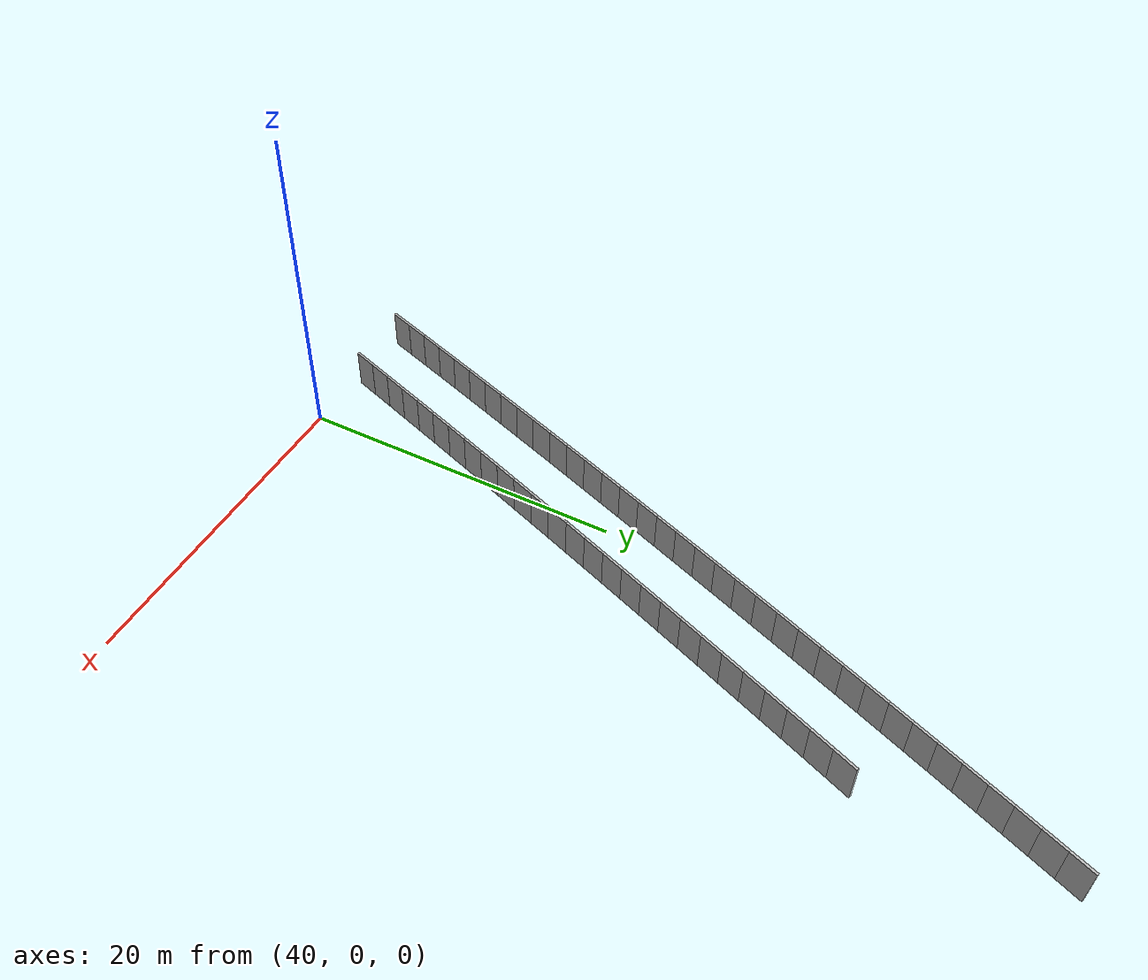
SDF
<?xml version="1.0" ?>
<sdf version="1.6">
  <model name="sps_0332">
    <pose frame="">0 0 0 0 -0 0</pose>
    <static>1</static>
    <self_collide>0</self_collide>
    <allow_auto_disable>0</allow_auto_disable>
    <link name="Wall4972">
      <kinematic>0</kinematic>
      <gravity>1</gravity>
      <self_collide>0</self_collide>
      <collision name="collision">
        <geometry>
          <box>
            <size>1.49656 0.15 2.5</size>
          </box>
        </geometry>
        <pose frame="">0 0 0 0 -0 0</pose>
      </collision>
      <visual name="visual">
        <geometry>
          <box>
            <size>1.49656 0.15 2.5</size>
          </box>
        </geometry>
        <pose frame="">0 0 0 0 -0 0</pose>
        <cast_shadows>1</cast_shadows>
        <transparency>0.0</transparency>
      </visual>
      <pose frame="">49.6162 37.5863 1.25 0 0 -1.94453</pose>
    </link>
    <link name="Wall4973">
      <kinematic>0</kinematic>
      <gravity>1</gravity>
      <self_collide>0</self_collide>
      <collision name="collision">
        <geometry>
          <box>
            <size>1.49637 0.15 2.5</size>
          </box>
        </geometry>
        <pose frame="">0 0 0 0 -0 0</pose>
      </collision>
      <visual name="visual">
        <geometry>
          <box>
            <size>1.49637 0.15 2.5</size>
          </box>
        </geometry>
        <pose frame="">0 0 0 0 -0 0</pose>
        <cast_shadows>1</cast_shadows>
        <transparency>0.0</transparency>
      </visual>
      <pose frame="">49.071 36.1927 1.25 0 0 -1.94287</pose>
    </link>
    <link name="Wall4974">
      <kinematic>0</kinematic>
      <gravity>1</gravity>
      <self_collide>0</self_collide>
      <collision name="collision">
        <geometry>
          <box>
            <size>1.49655 0.15 2.5</size>
          </box>
        </geometry>
        <pose frame="">0 0 0 0 -0 0</pose>
      </collision>
      <visual name="visual">
        <geometry>
          <box>
            <size>1.49655 0.15 2.5</size>
          </box>
        </geometry>
        <pose frame="">0 0 0 0 -0 0</pose>
        <cast_shadows>1</cast_shadows>
        <transparency>0.0</transparency>
      </visual>
      <pose frame="">48.528 34.7982 1.25 0 0 -1.94138</pose>
    </link>
    <link name="Wall4975">
      <kinematic>0</kinematic>
      <gravity>1</gravity>
      <self_collide>0</self_collide>
      <collision name="collision">
        <geometry>
          <box>
            <size>1.49649 0.15 2.5</size>
          </box>
        </geometry>
        <pose frame="">0 0 0 0 -0 0</pose>
      </collision>
      <visual name="visual">
        <geometry>
          <box>
            <size>1.49649 0.15 2.5</size>
          </box>
        </geometry>
        <pose frame="">0 0 0 0 -0 0</pose>
        <cast_shadows>1</cast_shadows>
        <transparency>0.0</transparency>
      </visual>
      <pose frame="">47.9872 33.4028 1.25 0 0 -1.93969</pose>
    </link>
    <link name="Wall4976">
      <kinematic>0</kinematic>
      <gravity>1</gravity>
      <self_collide>0</self_collide>
      <collision name="collision">
        <geometry>
          <box>
            <size>1.4965 0.15 2.5</size>
          </box>
        </geometry>
        <pose frame="">0 0 0 0 -0 0</pose>
      </collision>
      <visual name="visual">
        <geometry>
          <box>
            <size>1.4965 0.15 2.5</size>
          </box>
        </geometry>
        <pose frame="">0 0 0 0 -0 0</pose>
        <cast_shadows>1</cast_shadows>
        <transparency>0.0</transparency>
      </visual>
      <pose frame="">47.4486 32.0066 1.25 0 0 -1.93825</pose>
    </link>
    <link name="Wall4977">
      <kinematic>0</kinematic>
      <gravity>1</gravity>
      <self_collide>0</self_collide>
      <collision name="collision">
        <geometry>
          <box>
            <size>1.49637 0.15 2.5</size>
          </box>
        </geometry>
        <pose frame="">0 0 0 0 -0 0</pose>
      </collision>
      <visual name="visual">
        <geometry>
          <box>
            <size>1.49637 0.15 2.5</size>
          </box>
        </geometry>
        <pose frame="">0 0 0 0 -0 0</pose>
        <cast_shadows>1</cast_shadows>
        <transparency>0.0</transparency>
      </visual>
      <pose frame="">46.9123 30.6096 1.25 0 0 -1.93653</pose>
    </link>
    <link name="Wall4978">
      <kinematic>0</kinematic>
      <gravity>1</gravity>
      <self_collide>0</self_collide>
      <collision name="collision">
        <geometry>
          <box>
            <size>1.49664 0.15 2.5</size>
          </box>
        </geometry>
        <pose frame="">0 0 0 0 -0 0</pose>
      </collision>
      <visual name="visual">
        <geometry>
          <box>
            <size>1.49664 0.15 2.5</size>
          </box>
        </geometry>
        <pose frame="">0 0 0 0 -0 0</pose>
        <cast_shadows>1</cast_shadows>
        <transparency>0.0</transparency>
      </visual>
      <pose frame="">46.3781 29.2117 1.25 0 0 -1.93507</pose>
    </link>
    <link name="Wall4979">
      <kinematic>0</kinematic>
      <gravity>1</gravity>
      <self_collide>0</self_collide>
      <collision name="collision">
        <geometry>
          <box>
            <size>1.49654 0.15 2.5</size>
          </box>
        </geometry>
        <pose frame="">0 0 0 0 -0 0</pose>
      </collision>
      <visual name="visual">
        <geometry>
          <box>
            <size>1.49654 0.15 2.5</size>
          </box>
        </geometry>
        <pose frame="">0 0 0 0 -0 0</pose>
        <cast_shadows>1</cast_shadows>
        <transparency>0.0</transparency>
      </visual>
      <pose frame="">45.846 27.8129 1.25 0 0 -1.93352</pose>
    </link>
    <link name="Wall4980">
      <kinematic>0</kinematic>
      <gravity>1</gravity>
      <self_collide>0</self_collide>
      <collision name="collision">
        <geometry>
          <box>
            <size>1.49667 0.15 2.5</size>
          </box>
        </geometry>
        <pose frame="">0 0 0 0 -0 0</pose>
      </collision>
      <visual name="visual">
        <geometry>
          <box>
            <size>1.49667 0.15 2.5</size>
          </box>
        </geometry>
        <pose frame="">0 0 0 0 -0 0</pose>
        <cast_shadows>1</cast_shadows>
        <transparency>0.0</transparency>
      </visual>
      <pose frame="">45.3162 26.4132 1.25 0 0 -1.93179</pose>
    </link>
    <link name="Wall4981">
      <kinematic>0</kinematic>
      <gravity>1</gravity>
      <self_collide>0</self_collide>
      <collision name="collision">
        <geometry>
          <box>
            <size>1.49653 0.15 2.5</size>
          </box>
        </geometry>
        <pose frame="">0 0 0 0 -0 0</pose>
      </collision>
      <visual name="visual">
        <geometry>
          <box>
            <size>1.49653 0.15 2.5</size>
          </box>
        </geometry>
        <pose frame="">0 0 0 0 -0 0</pose>
        <cast_shadows>1</cast_shadows>
        <transparency>0.0</transparency>
      </visual>
      <pose frame="">44.7885 25.0127 1.25 0 0 -1.93038</pose>
    </link>
    <link name="Wall4982">
      <kinematic>0</kinematic>
      <gravity>1</gravity>
      <self_collide>0</self_collide>
      <collision name="collision">
        <geometry>
          <box>
            <size>1.49636 0.15 2.5</size>
          </box>
        </geometry>
        <pose frame="">0 0 0 0 -0 0</pose>
      </collision>
      <visual name="visual">
        <geometry>
          <box>
            <size>1.49636 0.15 2.5</size>
          </box>
        </geometry>
        <pose frame="">0 0 0 0 -0 0</pose>
        <cast_shadows>1</cast_shadows>
        <transparency>0.0</transparency>
      </visual>
      <pose frame="">44.2631 23.6115 1.25 0 0 -1.92868</pose>
    </link>
    <link name="Wall4983">
      <kinematic>0</kinematic>
      <gravity>1</gravity>
      <self_collide>0</self_collide>
      <collision name="collision">
        <geometry>
          <box>
            <size>1.49642 0.15 2.5</size>
          </box>
        </geometry>
        <pose frame="">0 0 0 0 -0 0</pose>
      </collision>
      <visual name="visual">
        <geometry>
          <box>
            <size>1.49642 0.15 2.5</size>
          </box>
        </geometry>
        <pose frame="">0 0 0 0 -0 0</pose>
        <cast_shadows>1</cast_shadows>
        <transparency>0.0</transparency>
      </visual>
      <pose frame="">43.74 22.2095 1.25 0 0 -1.92715</pose>
    </link>
    <link name="Wall4984">
      <kinematic>0</kinematic>
      <gravity>1</gravity>
      <self_collide>0</self_collide>
      <collision name="collision">
        <geometry>
          <box>
            <size>1.4966 0.15 2.5</size>
          </box>
        </geometry>
        <pose frame="">0 0 0 0 -0 0</pose>
      </collision>
      <visual name="visual">
        <geometry>
          <box>
            <size>1.4966 0.15 2.5</size>
          </box>
        </geometry>
        <pose frame="">0 0 0 0 -0 0</pose>
        <cast_shadows>1</cast_shadows>
        <transparency>0.0</transparency>
      </visual>
      <pose frame="">43.2191 20.8066 1.25 0 0 -1.92549</pose>
    </link>
    <link name="Wall4985">
      <kinematic>0</kinematic>
      <gravity>1</gravity>
      <self_collide>0</self_collide>
      <collision name="collision">
        <geometry>
          <box>
            <size>1.49653 0.15 2.5</size>
          </box>
        </geometry>
        <pose frame="">0 0 0 0 -0 0</pose>
      </collision>
      <visual name="visual">
        <geometry>
          <box>
            <size>1.49653 0.15 2.5</size>
          </box>
        </geometry>
        <pose frame="">0 0 0 0 -0 0</pose>
        <cast_shadows>1</cast_shadows>
        <transparency>0.0</transparency>
      </visual>
      <pose frame="">42.7005 19.4028 1.25 0 0 -1.92394</pose>
    </link>
    <link name="Wall4986">
      <kinematic>0</kinematic>
      <gravity>1</gravity>
      <self_collide>0</self_collide>
      <collision name="collision">
        <geometry>
          <box>
            <size>1.49636 0.15 2.5</size>
          </box>
        </geometry>
        <pose frame="">0 0 0 0 -0 0</pose>
      </collision>
      <visual name="visual">
        <geometry>
          <box>
            <size>1.49636 0.15 2.5</size>
          </box>
        </geometry>
        <pose frame="">0 0 0 0 -0 0</pose>
        <cast_shadows>1</cast_shadows>
        <transparency>0.0</transparency>
      </visual>
      <pose frame="">42.184 17.9983 1.25 0 0 -1.92246</pose>
    </link>
    <link name="Wall4987">
      <kinematic>0</kinematic>
      <gravity>1</gravity>
      <self_collide>0</self_collide>
      <collision name="collision">
        <geometry>
          <box>
            <size>1.4965 0.15 2.5</size>
          </box>
        </geometry>
        <pose frame="">0 0 0 0 -0 0</pose>
      </collision>
      <visual name="visual">
        <geometry>
          <box>
            <size>1.4965 0.15 2.5</size>
          </box>
        </geometry>
        <pose frame="">0 0 0 0 -0 0</pose>
        <cast_shadows>1</cast_shadows>
        <transparency>0.0</transparency>
      </visual>
      <pose frame="">41.6697 16.593 1.25 0 0 -1.92069</pose>
    </link>
    <link name="Wall4988">
      <kinematic>0</kinematic>
      <gravity>1</gravity>
      <self_collide>0</self_collide>
      <collision name="collision">
        <geometry>
          <box>
            <size>1.49655 0.15 2.5</size>
          </box>
        </geometry>
        <pose frame="">0 0 0 0 -0 0</pose>
      </collision>
      <visual name="visual">
        <geometry>
          <box>
            <size>1.49655 0.15 2.5</size>
          </box>
        </geometry>
        <pose frame="">0 0 0 0 -0 0</pose>
        <cast_shadows>1</cast_shadows>
        <transparency>0.0</transparency>
      </visual>
      <pose frame="">41.1577 15.1868 1.25 0 0 -1.91925</pose>
    </link>
    <link name="Wall4989">
      <kinematic>0</kinematic>
      <gravity>1</gravity>
      <self_collide>0</self_collide>
      <collision name="collision">
        <geometry>
          <box>
            <size>1.49655 0.15 2.5</size>
          </box>
        </geometry>
        <pose frame="">0 0 0 0 -0 0</pose>
      </collision>
      <visual name="visual">
        <geometry>
          <box>
            <size>1.49655 0.15 2.5</size>
          </box>
        </geometry>
        <pose frame="">0 0 0 0 -0 0</pose>
        <cast_shadows>1</cast_shadows>
        <transparency>0.0</transparency>
      </visual>
      <pose frame="">40.6478 13.7798 1.25 0 0 -1.91769</pose>
    </link>
    <link name="Wall4990">
      <kinematic>0</kinematic>
      <gravity>1</gravity>
      <self_collide>0</self_collide>
      <collision name="collision">
        <geometry>
          <box>
            <size>1.49637 0.15 2.5</size>
          </box>
        </geometry>
        <pose frame="">0 0 0 0 -0 0</pose>
      </collision>
      <visual name="visual">
        <geometry>
          <box>
            <size>1.49637 0.15 2.5</size>
          </box>
        </geometry>
        <pose frame="">0 0 0 0 -0 0</pose>
        <cast_shadows>1</cast_shadows>
        <transparency>0.0</transparency>
      </visual>
      <pose frame="">40.1403 12.372 1.25 0 0 -1.91591</pose>
    </link>
    <link name="Wall4991">
      <kinematic>0</kinematic>
      <gravity>1</gravity>
      <self_collide>0</self_collide>
      <collision name="collision">
        <geometry>
          <box>
            <size>1.49679 0.15 2.5</size>
          </box>
        </geometry>
        <pose frame="">0 0 0 0 -0 0</pose>
      </collision>
      <visual name="visual">
        <geometry>
          <box>
            <size>1.49679 0.15 2.5</size>
          </box>
        </geometry>
        <pose frame="">0 0 0 0 -0 0</pose>
        <cast_shadows>1</cast_shadows>
        <transparency>0.0</transparency>
      </visual>
      <pose frame="">39.635 10.9633 1.25 0 0 -1.91451</pose>
    </link>
    <link name="Wall4992">
      <kinematic>0</kinematic>
      <gravity>1</gravity>
      <self_collide>0</self_collide>
      <collision name="collision">
        <geometry>
          <box>
            <size>1.49625 0.15 2.5</size>
          </box>
        </geometry>
        <pose frame="">0 0 0 0 -0 0</pose>
      </collision>
      <visual name="visual">
        <geometry>
          <box>
            <size>1.49625 0.15 2.5</size>
          </box>
        </geometry>
        <pose frame="">0 0 0 0 -0 0</pose>
        <cast_shadows>1</cast_shadows>
        <transparency>0.0</transparency>
      </visual>
      <pose frame="">39.1319 9.55388 1.25 0 0 -1.91277</pose>
    </link>
    <link name="Wall4993">
      <kinematic>0</kinematic>
      <gravity>1</gravity>
      <self_collide>0</self_collide>
      <collision name="collision">
        <geometry>
          <box>
            <size>1.49669 0.15 2.5</size>
          </box>
        </geometry>
        <pose frame="">0 0 0 0 -0 0</pose>
      </collision>
      <visual name="visual">
        <geometry>
          <box>
            <size>1.49669 0.15 2.5</size>
          </box>
        </geometry>
        <pose frame="">0 0 0 0 -0 0</pose>
        <cast_shadows>1</cast_shadows>
        <transparency>0.0</transparency>
      </visual>
      <pose frame="">38.6312 8.14369 1.25 0 0 -1.91129</pose>
    </link>
    <link name="Wall4994">
      <kinematic>0</kinematic>
      <gravity>1</gravity>
      <self_collide>0</self_collide>
      <collision name="collision">
        <geometry>
          <box>
            <size>1.49651 0.15 2.5</size>
          </box>
        </geometry>
        <pose frame="">0 0 0 0 -0 0</pose>
      </collision>
      <visual name="visual">
        <geometry>
          <box>
            <size>1.49651 0.15 2.5</size>
          </box>
        </geometry>
        <pose frame="">0 0 0 0 -0 0</pose>
        <cast_shadows>1</cast_shadows>
        <transparency>0.0</transparency>
      </visual>
      <pose frame="">38.1326 6.73259 1.25 0 0 -1.9096</pose>
    </link>
    <link name="Wall4995">
      <kinematic>0</kinematic>
      <gravity>1</gravity>
      <self_collide>0</self_collide>
      <collision name="collision">
        <geometry>
          <box>
            <size>1.49649 0.15 2.5</size>
          </box>
        </geometry>
        <pose frame="">0 0 0 0 -0 0</pose>
      </collision>
      <visual name="visual">
        <geometry>
          <box>
            <size>1.49649 0.15 2.5</size>
          </box>
        </geometry>
        <pose frame="">0 0 0 0 -0 0</pose>
        <cast_shadows>1</cast_shadows>
        <transparency>0.0</transparency>
      </visual>
      <pose frame="">37.6363 5.32078 1.25 0 0 -1.90809</pose>
    </link>
    <link name="Wall4996">
      <kinematic>0</kinematic>
      <gravity>1</gravity>
      <self_collide>0</self_collide>
      <collision name="collision">
        <geometry>
          <box>
            <size>1.49655 0.15 2.5</size>
          </box>
        </geometry>
        <pose frame="">0 0 0 0 -0 0</pose>
      </collision>
      <visual name="visual">
        <geometry>
          <box>
            <size>1.49655 0.15 2.5</size>
          </box>
        </geometry>
        <pose frame="">0 0 0 0 -0 0</pose>
        <cast_shadows>1</cast_shadows>
        <transparency>0.0</transparency>
      </visual>
      <pose frame="">37.1421 3.90819 1.25 0 0 -1.90648</pose>
    </link>
    <link name="Wall4997">
      <kinematic>0</kinematic>
      <gravity>1</gravity>
      <self_collide>0</self_collide>
      <collision name="collision">
        <geometry>
          <box>
            <size>1.49658 0.15 2.5</size>
          </box>
        </geometry>
        <pose frame="">0 0 0 0 -0 0</pose>
      </collision>
      <visual name="visual">
        <geometry>
          <box>
            <size>1.49658 0.15 2.5</size>
          </box>
        </geometry>
        <pose frame="">0 0 0 0 -0 0</pose>
        <cast_shadows>1</cast_shadows>
        <transparency>0.0</transparency>
      </visual>
      <pose frame="">36.6502 2.4948 1.25 0 0 -1.90504</pose>
    </link>
    <link name="Wall4998">
      <kinematic>0</kinematic>
      <gravity>1</gravity>
      <self_collide>0</self_collide>
      <collision name="collision">
        <geometry>
          <box>
            <size>1.49638 0.15 2.5</size>
          </box>
        </geometry>
        <pose frame="">0 0 0 0 -0 0</pose>
      </collision>
      <visual name="visual">
        <geometry>
          <box>
            <size>1.49638 0.15 2.5</size>
          </box>
        </geometry>
        <pose frame="">0 0 0 0 -0 0</pose>
        <cast_shadows>1</cast_shadows>
        <transparency>0.0</transparency>
      </visual>
      <pose frame="">36.1605 1.0807 1.25 0 0 -1.90328</pose>
    </link>
    <link name="Wall6761">
      <kinematic>0</kinematic>
      <gravity>1</gravity>
      <self_collide>0</self_collide>
      <collision name="collision">
        <geometry>
          <box>
            <size>1.50302 0.15 2.5</size>
          </box>
        </geometry>
        <pose frame="">0 0 0 0 -0 0</pose>
      </collision>
      <visual name="visual">
        <geometry>
          <box>
            <size>1.50302 0.15 2.5</size>
          </box>
        </geometry>
        <pose frame="">0 0 0 0 -0 0</pose>
        <cast_shadows>1</cast_shadows>
        <transparency>0.0</transparency>
      </visual>
      <pose frame="">49.6587 48.8716 1.25 0 0 -1.95578</pose>
    </link>
    <link name="Wall6762">
      <kinematic>0</kinematic>
      <gravity>1</gravity>
      <self_collide>0</self_collide>
      <collision name="collision">
        <geometry>
          <box>
            <size>1.50299 0.15 2.5</size>
          </box>
        </geometry>
        <pose frame="">0 0 0 0 -0 0</pose>
      </collision>
      <visual name="visual">
        <geometry>
          <box>
            <size>1.50299 0.15 2.5</size>
          </box>
        </geometry>
        <pose frame="">0 0 0 0 -0 0</pose>
        <cast_shadows>1</cast_shadows>
        <transparency>0.0</transparency>
      </visual>
      <pose frame="">49.0955 47.4781 1.25 0 0 -1.95399</pose>
    </link>
    <link name="Wall6763">
      <kinematic>0</kinematic>
      <gravity>1</gravity>
      <self_collide>0</self_collide>
      <collision name="collision">
        <geometry>
          <box>
            <size>1.5031 0.15 2.5</size>
          </box>
        </geometry>
        <pose frame="">0 0 0 0 -0 0</pose>
      </collision>
      <visual name="visual">
        <geometry>
          <box>
            <size>1.5031 0.15 2.5</size>
          </box>
        </geometry>
        <pose frame="">0 0 0 0 -0 0</pose>
        <cast_shadows>1</cast_shadows>
        <transparency>0.0</transparency>
      </visual>
      <pose frame="">48.5346 46.0836 1.25 0 0 -1.95243</pose>
    </link>
    <link name="Wall6764">
      <kinematic>0</kinematic>
      <gravity>1</gravity>
      <self_collide>0</self_collide>
      <collision name="collision">
        <geometry>
          <box>
            <size>1.50307 0.15 2.5</size>
          </box>
        </geometry>
        <pose frame="">0 0 0 0 -0 0</pose>
      </collision>
      <visual name="visual">
        <geometry>
          <box>
            <size>1.50307 0.15 2.5</size>
          </box>
        </geometry>
        <pose frame="">0 0 0 0 -0 0</pose>
        <cast_shadows>1</cast_shadows>
        <transparency>0.0</transparency>
      </visual>
      <pose frame="">47.9759 44.6882 1.25 0 0 -1.95087</pose>
    </link>
    <link name="Wall6765">
      <kinematic>0</kinematic>
      <gravity>1</gravity>
      <self_collide>0</self_collide>
      <collision name="collision">
        <geometry>
          <box>
            <size>1.50314 0.15 2.5</size>
          </box>
        </geometry>
        <pose frame="">0 0 0 0 -0 0</pose>
      </collision>
      <visual name="visual">
        <geometry>
          <box>
            <size>1.50314 0.15 2.5</size>
          </box>
        </geometry>
        <pose frame="">0 0 0 0 -0 0</pose>
        <cast_shadows>1</cast_shadows>
        <transparency>0.0</transparency>
      </visual>
      <pose frame="">47.4194 43.2919 1.25 0 0 -1.94923</pose>
    </link>
    <link name="Wall6766">
      <kinematic>0</kinematic>
      <gravity>1</gravity>
      <self_collide>0</self_collide>
      <collision name="collision">
        <geometry>
          <box>
            <size>1.50315 0.15 2.5</size>
          </box>
        </geometry>
        <pose frame="">0 0 0 0 -0 0</pose>
      </collision>
      <visual name="visual">
        <geometry>
          <box>
            <size>1.50315 0.15 2.5</size>
          </box>
        </geometry>
        <pose frame="">0 0 0 0 -0 0</pose>
        <cast_shadows>1</cast_shadows>
        <transparency>0.0</transparency>
      </visual>
      <pose frame="">46.8651 41.8947 1.25 0 0 -1.9477</pose>
    </link>
    <link name="Wall6767">
      <kinematic>0</kinematic>
      <gravity>1</gravity>
      <self_collide>0</self_collide>
      <collision name="collision">
        <geometry>
          <box>
            <size>1.50303 0.15 2.5</size>
          </box>
        </geometry>
        <pose frame="">0 0 0 0 -0 0</pose>
      </collision>
      <visual name="visual">
        <geometry>
          <box>
            <size>1.50303 0.15 2.5</size>
          </box>
        </geometry>
        <pose frame="">0 0 0 0 -0 0</pose>
        <cast_shadows>1</cast_shadows>
        <transparency>0.0</transparency>
      </visual>
      <pose frame="">46.3129 40.4967 1.25 0 0 -1.94616</pose>
    </link>
    <link name="Wall6768">
      <kinematic>0</kinematic>
      <gravity>1</gravity>
      <self_collide>0</self_collide>
      <collision name="collision">
        <geometry>
          <box>
            <size>1.50308 0.15 2.5</size>
          </box>
        </geometry>
        <pose frame="">0 0 0 0 -0 0</pose>
      </collision>
      <visual name="visual">
        <geometry>
          <box>
            <size>1.50308 0.15 2.5</size>
          </box>
        </geometry>
        <pose frame="">0 0 0 0 -0 0</pose>
        <cast_shadows>1</cast_shadows>
        <transparency>0.0</transparency>
      </visual>
      <pose frame="">45.7629 39.0979 1.25 0 0 -1.9447</pose>
    </link>
    <link name="Wall6769">
      <kinematic>0</kinematic>
      <gravity>1</gravity>
      <self_collide>0</self_collide>
      <collision name="collision">
        <geometry>
          <box>
            <size>1.50298 0.15 2.5</size>
          </box>
        </geometry>
        <pose frame="">0 0 0 0 -0 0</pose>
      </collision>
      <visual name="visual">
        <geometry>
          <box>
            <size>1.50298 0.15 2.5</size>
          </box>
        </geometry>
        <pose frame="">0 0 0 0 -0 0</pose>
        <cast_shadows>1</cast_shadows>
        <transparency>0.0</transparency>
      </visual>
      <pose frame="">45.2152 37.6982 1.25 0 0 -1.94286</pose>
    </link>
    <link name="Wall6770">
      <kinematic>0</kinematic>
      <gravity>1</gravity>
      <self_collide>0</self_collide>
      <collision name="collision">
        <geometry>
          <box>
            <size>1.50327 0.15 2.5</size>
          </box>
        </geometry>
        <pose frame="">0 0 0 0 -0 0</pose>
      </collision>
      <visual name="visual">
        <geometry>
          <box>
            <size>1.50327 0.15 2.5</size>
          </box>
        </geometry>
        <pose frame="">0 0 0 0 -0 0</pose>
        <cast_shadows>1</cast_shadows>
        <transparency>0.0</transparency>
      </visual>
      <pose frame="">44.6699 36.2975 1.25 0 0 -1.94134</pose>
    </link>
    <link name="Wall6771">
      <kinematic>0</kinematic>
      <gravity>1</gravity>
      <self_collide>0</self_collide>
      <collision name="collision">
        <geometry>
          <box>
            <size>1.50301 0.15 2.5</size>
          </box>
        </geometry>
        <pose frame="">0 0 0 0 -0 0</pose>
      </collision>
      <visual name="visual">
        <geometry>
          <box>
            <size>1.50301 0.15 2.5</size>
          </box>
        </geometry>
        <pose frame="">0 0 0 0 -0 0</pose>
        <cast_shadows>1</cast_shadows>
        <transparency>0.0</transparency>
      </visual>
      <pose frame="">44.1265 34.896 1.25 0 0 -1.93989</pose>
    </link>
    <link name="Wall6772">
      <kinematic>0</kinematic>
      <gravity>1</gravity>
      <self_collide>0</self_collide>
      <collision name="collision">
        <geometry>
          <box>
            <size>1.50305 0.15 2.5</size>
          </box>
        </geometry>
        <pose frame="">0 0 0 0 -0 0</pose>
      </collision>
      <visual name="visual">
        <geometry>
          <box>
            <size>1.50305 0.15 2.5</size>
          </box>
        </geometry>
        <pose frame="">0 0 0 0 -0 0</pose>
        <cast_shadows>1</cast_shadows>
        <transparency>0.0</transparency>
      </visual>
      <pose frame="">43.5855 33.4937 1.25 0 0 -1.93814</pose>
    </link>
    <link name="Wall6773">
      <kinematic>0</kinematic>
      <gravity>1</gravity>
      <self_collide>0</self_collide>
      <collision name="collision">
        <geometry>
          <box>
            <size>1.50312 0.15 2.5</size>
          </box>
        </geometry>
        <pose frame="">0 0 0 0 -0 0</pose>
      </collision>
      <visual name="visual">
        <geometry>
          <box>
            <size>1.50312 0.15 2.5</size>
          </box>
        </geometry>
        <pose frame="">0 0 0 0 -0 0</pose>
        <cast_shadows>1</cast_shadows>
        <transparency>0.0</transparency>
      </visual>
      <pose frame="">43.0467 32.0905 1.25 0 0 -1.93668</pose>
    </link>
    <link name="Wall6774">
      <kinematic>0</kinematic>
      <gravity>1</gravity>
      <self_collide>0</self_collide>
      <collision name="collision">
        <geometry>
          <box>
            <size>1.50301 0.15 2.5</size>
          </box>
        </geometry>
        <pose frame="">0 0 0 0 -0 0</pose>
      </collision>
      <visual name="visual">
        <geometry>
          <box>
            <size>1.50301 0.15 2.5</size>
          </box>
        </geometry>
        <pose frame="">0 0 0 0 -0 0</pose>
        <cast_shadows>1</cast_shadows>
        <transparency>0.0</transparency>
      </visual>
      <pose frame="">42.5102 30.6865 1.25 0 0 -1.93501</pose>
    </link>
    <link name="Wall6775">
      <kinematic>0</kinematic>
      <gravity>1</gravity>
      <self_collide>0</self_collide>
      <collision name="collision">
        <geometry>
          <box>
            <size>1.50314 0.15 2.5</size>
          </box>
        </geometry>
        <pose frame="">0 0 0 0 -0 0</pose>
      </collision>
      <visual name="visual">
        <geometry>
          <box>
            <size>1.50314 0.15 2.5</size>
          </box>
        </geometry>
        <pose frame="">0 0 0 0 -0 0</pose>
        <cast_shadows>1</cast_shadows>
        <transparency>0.0</transparency>
      </visual>
      <pose frame="">41.9759 29.2816 1.25 0 0 -1.93342</pose>
    </link>
    <link name="Wall6776">
      <kinematic>0</kinematic>
      <gravity>1</gravity>
      <self_collide>0</self_collide>
      <collision name="collision">
        <geometry>
          <box>
            <size>1.50304 0.15 2.5</size>
          </box>
        </geometry>
        <pose frame="">0 0 0 0 -0 0</pose>
      </collision>
      <visual name="visual">
        <geometry>
          <box>
            <size>1.50304 0.15 2.5</size>
          </box>
        </geometry>
        <pose frame="">0 0 0 0 -0 0</pose>
        <cast_shadows>1</cast_shadows>
        <transparency>0.0</transparency>
      </visual>
      <pose frame="">41.4438 27.8758 1.25 0 0 -1.93175</pose>
    </link>
    <link name="Wall6777">
      <kinematic>0</kinematic>
      <gravity>1</gravity>
      <self_collide>0</self_collide>
      <collision name="collision">
        <geometry>
          <box>
            <size>1.50305 0.15 2.5</size>
          </box>
        </geometry>
        <pose frame="">0 0 0 0 -0 0</pose>
      </collision>
      <visual name="visual">
        <geometry>
          <box>
            <size>1.50305 0.15 2.5</size>
          </box>
        </geometry>
        <pose frame="">0 0 0 0 -0 0</pose>
        <cast_shadows>1</cast_shadows>
        <transparency>0.0</transparency>
      </visual>
      <pose frame="">40.9141 26.4692 1.25 0 0 -1.93027</pose>
    </link>
    <link name="Wall6778">
      <kinematic>0</kinematic>
      <gravity>1</gravity>
      <self_collide>0</self_collide>
      <collision name="collision">
        <geometry>
          <box>
            <size>1.5031 0.15 2.5</size>
          </box>
        </geometry>
        <pose frame="">0 0 0 0 -0 0</pose>
      </collision>
      <visual name="visual">
        <geometry>
          <box>
            <size>1.5031 0.15 2.5</size>
          </box>
        </geometry>
        <pose frame="">0 0 0 0 -0 0</pose>
        <cast_shadows>1</cast_shadows>
        <transparency>0.0</transparency>
      </visual>
      <pose frame="">40.3864 25.0618 1.25 0 0 -1.92874</pose>
    </link>
    <link name="Wall6779">
      <kinematic>0</kinematic>
      <gravity>1</gravity>
      <self_collide>0</self_collide>
      <collision name="collision">
        <geometry>
          <box>
            <size>1.50302 0.15 2.5</size>
          </box>
        </geometry>
        <pose frame="">0 0 0 0 -0 0</pose>
      </collision>
      <visual name="visual">
        <geometry>
          <box>
            <size>1.50302 0.15 2.5</size>
          </box>
        </geometry>
        <pose frame="">0 0 0 0 -0 0</pose>
        <cast_shadows>1</cast_shadows>
        <transparency>0.0</transparency>
      </visual>
      <pose frame="">39.8609 23.6536 1.25 0 0 -1.9272</pose>
    </link>
    <link name="Wall6780">
      <kinematic>0</kinematic>
      <gravity>1</gravity>
      <self_collide>0</self_collide>
      <collision name="collision">
        <geometry>
          <box>
            <size>1.50315 0.15 2.5</size>
          </box>
        </geometry>
        <pose frame="">0 0 0 0 -0 0</pose>
      </collision>
      <visual name="visual">
        <geometry>
          <box>
            <size>1.50315 0.15 2.5</size>
          </box>
        </geometry>
        <pose frame="">0 0 0 0 -0 0</pose>
        <cast_shadows>1</cast_shadows>
        <transparency>0.0</transparency>
      </visual>
      <pose frame="">39.3377 22.2445 1.25 0 0 -1.92544</pose>
    </link>
    <link name="Wall6781">
      <kinematic>0</kinematic>
      <gravity>1</gravity>
      <self_collide>0</self_collide>
      <collision name="collision">
        <geometry>
          <box>
            <size>1.50304 0.15 2.5</size>
          </box>
        </geometry>
        <pose frame="">0 0 0 0 -0 0</pose>
      </collision>
      <visual name="visual">
        <geometry>
          <box>
            <size>1.50304 0.15 2.5</size>
          </box>
        </geometry>
        <pose frame="">0 0 0 0 -0 0</pose>
        <cast_shadows>1</cast_shadows>
        <transparency>0.0</transparency>
      </visual>
      <pose frame="">38.8167 20.8346 1.25 0 0 -1.92408</pose>
    </link>
    <link name="Wall6782">
      <kinematic>0</kinematic>
      <gravity>1</gravity>
      <self_collide>0</self_collide>
      <collision name="collision">
        <geometry>
          <box>
            <size>1.50312 0.15 2.5</size>
          </box>
        </geometry>
        <pose frame="">0 0 0 0 -0 0</pose>
      </collision>
      <visual name="visual">
        <geometry>
          <box>
            <size>1.50312 0.15 2.5</size>
          </box>
        </geometry>
        <pose frame="">0 0 0 0 -0 0</pose>
        <cast_shadows>1</cast_shadows>
        <transparency>0.0</transparency>
      </visual>
      <pose frame="">38.2979 19.4239 1.25 0 0 -1.92233</pose>
    </link>
    <link name="Wall6783">
      <kinematic>0</kinematic>
      <gravity>1</gravity>
      <self_collide>0</self_collide>
      <collision name="collision">
        <geometry>
          <box>
            <size>1.50295 0.15 2.5</size>
          </box>
        </geometry>
        <pose frame="">0 0 0 0 -0 0</pose>
      </collision>
      <visual name="visual">
        <geometry>
          <box>
            <size>1.50295 0.15 2.5</size>
          </box>
        </geometry>
        <pose frame="">0 0 0 0 -0 0</pose>
        <cast_shadows>1</cast_shadows>
        <transparency>0.0</transparency>
      </visual>
      <pose frame="">37.7814 18.0124 1.25 0 0 -1.92085</pose>
    </link>
    <link name="Wall6784">
      <kinematic>0</kinematic>
      <gravity>1</gravity>
      <self_collide>0</self_collide>
      <collision name="collision">
        <geometry>
          <box>
            <size>1.50304 0.15 2.5</size>
          </box>
        </geometry>
        <pose frame="">0 0 0 0 -0 0</pose>
      </collision>
      <visual name="visual">
        <geometry>
          <box>
            <size>1.50304 0.15 2.5</size>
          </box>
        </geometry>
        <pose frame="">0 0 0 0 -0 0</pose>
        <cast_shadows>1</cast_shadows>
        <transparency>0.0</transparency>
      </visual>
      <pose frame="">37.2671 16.6001 1.25 0 0 -1.91911</pose>
    </link>
    <link name="Wall6785">
      <kinematic>0</kinematic>
      <gravity>1</gravity>
      <self_collide>0</self_collide>
      <collision name="collision">
        <geometry>
          <box>
            <size>1.50303 0.15 2.5</size>
          </box>
        </geometry>
        <pose frame="">0 0 0 0 -0 0</pose>
      </collision>
      <visual name="visual">
        <geometry>
          <box>
            <size>1.50303 0.15 2.5</size>
          </box>
        </geometry>
        <pose frame="">0 0 0 0 -0 0</pose>
        <cast_shadows>1</cast_shadows>
        <transparency>0.0</transparency>
      </visual>
      <pose frame="">36.7552 15.1869 1.25 0 0 -1.91755</pose>
    </link>
    <link name="Wall6786">
      <kinematic>0</kinematic>
      <gravity>1</gravity>
      <self_collide>0</self_collide>
      <collision name="collision">
        <geometry>
          <box>
            <size>1.50309 0.15 2.5</size>
          </box>
        </geometry>
        <pose frame="">0 0 0 0 -0 0</pose>
      </collision>
      <visual name="visual">
        <geometry>
          <box>
            <size>1.50309 0.15 2.5</size>
          </box>
        </geometry>
        <pose frame="">0 0 0 0 -0 0</pose>
        <cast_shadows>1</cast_shadows>
        <transparency>0.0</transparency>
      </visual>
      <pose frame="">36.2455 13.7729 1.25 0 0 -1.91598</pose>
    </link>
    <link name="Wall6787">
      <kinematic>0</kinematic>
      <gravity>1</gravity>
      <self_collide>0</self_collide>
      <collision name="collision">
        <geometry>
          <box>
            <size>1.50316 0.15 2.5</size>
          </box>
        </geometry>
        <pose frame="">0 0 0 0 -0 0</pose>
      </collision>
      <visual name="visual">
        <geometry>
          <box>
            <size>1.50316 0.15 2.5</size>
          </box>
        </geometry>
        <pose frame="">0 0 0 0 -0 0</pose>
        <cast_shadows>1</cast_shadows>
        <transparency>0.0</transparency>
      </visual>
      <pose frame="">35.7379 12.3581 1.25 0 0 -1.91454</pose>
    </link>
    <link name="Wall6788">
      <kinematic>0</kinematic>
      <gravity>1</gravity>
      <self_collide>0</self_collide>
      <collision name="collision">
        <geometry>
          <box>
            <size>1.50297 0.15 2.5</size>
          </box>
        </geometry>
        <pose frame="">0 0 0 0 -0 0</pose>
      </collision>
      <visual name="visual">
        <geometry>
          <box>
            <size>1.50297 0.15 2.5</size>
          </box>
        </geometry>
        <pose frame="">0 0 0 0 -0 0</pose>
        <cast_shadows>1</cast_shadows>
        <transparency>0.0</transparency>
      </visual>
      <pose frame="">35.2327 10.9425 1.25 0 0 -1.91274</pose>
    </link>
    <link name="Wall6789">
      <kinematic>0</kinematic>
      <gravity>1</gravity>
      <self_collide>0</self_collide>
      <collision name="collision">
        <geometry>
          <box>
            <size>1.50312 0.15 2.5</size>
          </box>
        </geometry>
        <pose frame="">0 0 0 0 -0 0</pose>
      </collision>
      <visual name="visual">
        <geometry>
          <box>
            <size>1.50312 0.15 2.5</size>
          </box>
        </geometry>
        <pose frame="">0 0 0 0 -0 0</pose>
        <cast_shadows>1</cast_shadows>
        <transparency>0.0</transparency>
      </visual>
      <pose frame="">34.7297 9.52611 1.25 0 0 -1.91132</pose>
    </link>
    <link name="Wall6790">
      <kinematic>0</kinematic>
      <gravity>1</gravity>
      <self_collide>0</self_collide>
      <collision name="collision">
        <geometry>
          <box>
            <size>1.50313 0.15 2.5</size>
          </box>
        </geometry>
        <pose frame="">0 0 0 0 -0 0</pose>
      </collision>
      <visual name="visual">
        <geometry>
          <box>
            <size>1.50313 0.15 2.5</size>
          </box>
        </geometry>
        <pose frame="">0 0 0 0 -0 0</pose>
        <cast_shadows>1</cast_shadows>
        <transparency>0.0</transparency>
      </visual>
      <pose frame="">34.2288 8.1089 1.25 0 0 -1.90977</pose>
    </link>
    <link name="Wall6791">
      <kinematic>0</kinematic>
      <gravity>1</gravity>
      <self_collide>0</self_collide>
      <collision name="collision">
        <geometry>
          <box>
            <size>1.50296 0.15 2.5</size>
          </box>
        </geometry>
        <pose frame="">0 0 0 0 -0 0</pose>
      </collision>
      <visual name="visual">
        <geometry>
          <box>
            <size>1.50296 0.15 2.5</size>
          </box>
        </geometry>
        <pose frame="">0 0 0 0 -0 0</pose>
        <cast_shadows>1</cast_shadows>
        <transparency>0.0</transparency>
      </visual>
      <pose frame="">33.7301 6.69099 1.25 0 0 -1.90821</pose>
    </link>
    <link name="Wall6792">
      <kinematic>0</kinematic>
      <gravity>1</gravity>
      <self_collide>0</self_collide>
      <collision name="collision">
        <geometry>
          <box>
            <size>1.50306 0.15 2.5</size>
          </box>
        </geometry>
        <pose frame="">0 0 0 0 -0 0</pose>
      </collision>
      <visual name="visual">
        <geometry>
          <box>
            <size>1.50306 0.15 2.5</size>
          </box>
        </geometry>
        <pose frame="">0 0 0 0 -0 0</pose>
        <cast_shadows>1</cast_shadows>
        <transparency>0.0</transparency>
      </visual>
      <pose frame="">33.2338 5.27229 1.25 0 0 -1.90643</pose>
    </link>
    <link name="Wall6793">
      <kinematic>0</kinematic>
      <gravity>1</gravity>
      <self_collide>0</self_collide>
      <collision name="collision">
        <geometry>
          <box>
            <size>1.50306 0.15 2.5</size>
          </box>
        </geometry>
        <pose frame="">0 0 0 0 -0 0</pose>
      </collision>
      <visual name="visual">
        <geometry>
          <box>
            <size>1.50306 0.15 2.5</size>
          </box>
        </geometry>
        <pose frame="">0 0 0 0 -0 0</pose>
        <cast_shadows>1</cast_shadows>
        <transparency>0.0</transparency>
      </visual>
      <pose frame="">32.7398 3.85271 1.25 0 0 -1.90484</pose>
    </link>
    <link name="Wall6794">
      <kinematic>0</kinematic>
      <gravity>1</gravity>
      <self_collide>0</self_collide>
      <collision name="collision">
        <geometry>
          <box>
            <size>1.50321 0.15 2.5</size>
          </box>
        </geometry>
        <pose frame="">0 0 0 0 -0 0</pose>
      </collision>
      <visual name="visual">
        <geometry>
          <box>
            <size>1.50321 0.15 2.5</size>
          </box>
        </geometry>
        <pose frame="">0 0 0 0 -0 0</pose>
        <cast_shadows>1</cast_shadows>
        <transparency>0.0</transparency>
      </visual>
      <pose frame="">32.248 2.4323 1.25 0 0 -1.90338</pose>
    </link>
    <link name="Wall6795">
      <kinematic>0</kinematic>
      <gravity>1</gravity>
      <self_collide>0</self_collide>
      <collision name="collision">
        <geometry>
          <box>
            <size>1.50313 0.15 2.5</size>
          </box>
        </geometry>
        <pose frame="">0 0 0 0 -0 0</pose>
      </collision>
      <visual name="visual">
        <geometry>
          <box>
            <size>1.50313 0.15 2.5</size>
          </box>
        </geometry>
        <pose frame="">0 0 0 0 -0 0</pose>
        <cast_shadows>1</cast_shadows>
        <transparency>0.0</transparency>
      </visual>
      <pose frame="">31.7584 1.01109 1.25 0 0 -1.90173</pose>
    </link>
  </model>
</sdf>
